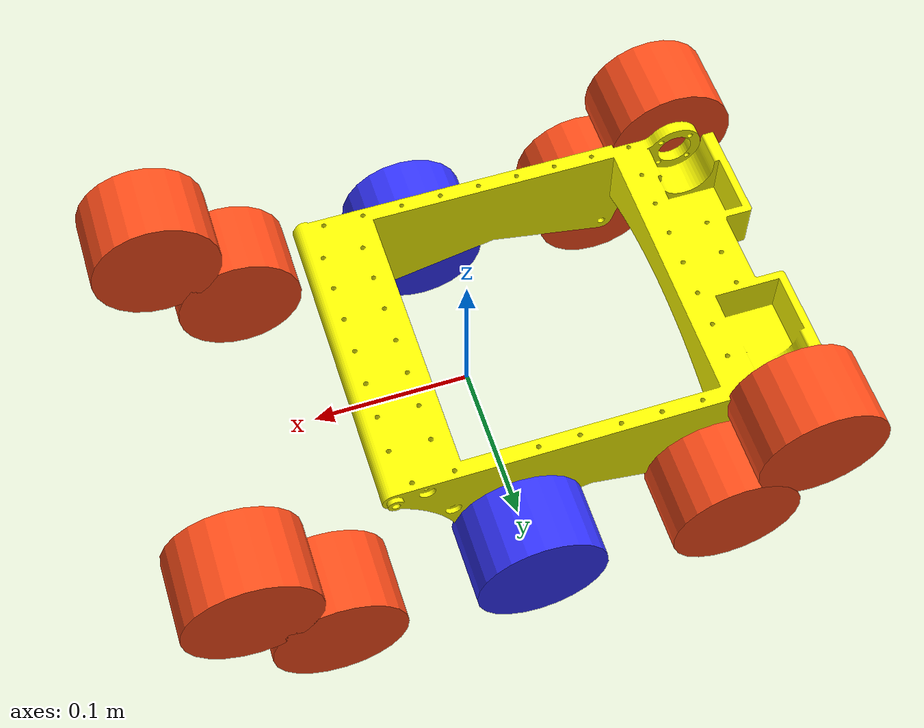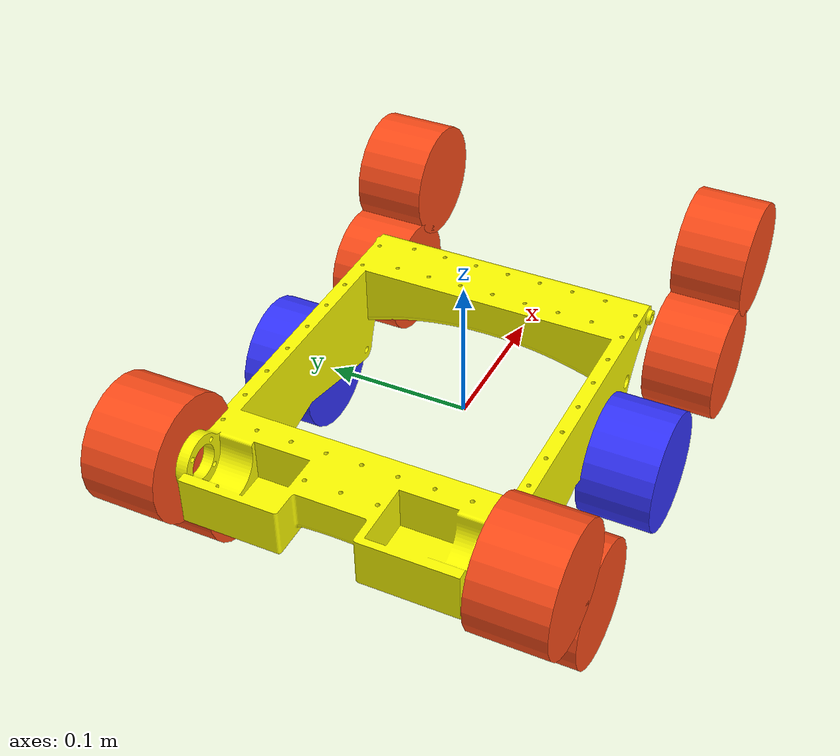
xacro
<?xml version="1.0"?>
<robot xmlns:xacro="http://www.ros.org/wiki/xacro">
    <xacro:include filename="inertial_macros.xacro" />

    <material name="white">
        <color rgba="1 1 1 1"/>
    </material>

    <material name="orange">
        <color rgba="1 0.3 0.1 1"/>
    </material>

    <material name="blue">
        <color rgba="0.2 0.2 1 1"/>
    </material>

    <material name="black">
        <color rgba="0 0 0 1"/>
    </material>

    <material name="red">
        <color rgba="1 0 0 1"/>
    </material>

    <material name="yellow">
        <color rgba="1 1 0 1"/>
    </material>

    <link name="base_link">

    </link>

    <!-- CHASSIS LINK -->
    <joint name="chassis_joint" type="fixed">
        <parent link="base_link" />
        <child link="chassis" />
        <origin xyz="0 0 0.066345" />
    </joint>

    <link name="chassis">
        <visual>
            <origin xyz="0 -0.090 0" rpy="0 0 -${pi/2}" />
            <geometry>
                <mesh filename="file://$(find robot_description)/stl/robot_frame.stl" scale="0.001 0.001 0.001" />
            </geometry>
            <material name="yellow" />
        </visual>
        <collision>
            <origin xyz="0 0 -0.037" />
            <geometry>
                <box size="0.356 0.195 0.074" />
            </geometry>
        </collision>
        <xacro:inertial_box mass="0.5" x="0.356" y="0.195" z="0.074">
            <origin xyz="0 0 0.0" rpy="0 0 0" />
        </xacro:inertial_box>
    </link>

    <!-- LEFT WHEEL LINK -->

    <!-- Wheels have r=30.6mm and track is 10.6mm wide, so total radius of 41.2mm -->
    <!-- The track is 50mm wide -->
    <joint name="left_wheel_joint" type="continuous">
        <parent link="base_link" />
        <child link="left_wheel" />
        <origin xyz="0 0.1225 0" rpy="-${pi/2} 0 0" />
        <axis xyz="0 0 1" />
    </joint>

    <link name="left_wheel">
        <visual>
            <geometry>
                <cylinder radius="0.0412" length="0.05" />
            </geometry>
            <material name="blue" />
        </visual>
        <collision>
            <geometry>
                <cylinder radius="0.0412" length="0.05" />
            </geometry>
        </collision>
        <xacro:inertial_cylinder mass="0.1" length="0.05" radius="0.0412">
            <origin xyz="0 0 0" rpy="0 0 0" />
        </xacro:inertial_cylinder>
    </link>

    <!-- RIGHT WHEEL LINK -->
    <joint name="right_wheel_joint" type="continuous">
        <parent link="base_link" />
        <child link="right_wheel" />
        <origin xyz="0 -0.1225 0" rpy="${pi/2} 0 0" />
        <axis xyz="0 0 -1" />
    </joint>

    <link name="right_wheel">
        <visual>
            <geometry>
                <cylinder radius="0.0412" length="0.05" />
            </geometry>
            <material name="blue" />
        </visual>
        <collision>
            <geometry>
                <cylinder radius="0.0412" length="0.05" />
            </geometry>
        </collision>
        <xacro:inertial_cylinder mass="0.1" length="0.05" radius="0.0412">
            <origin xyz="0 0 0" rpy="0 0 0" />
        </xacro:inertial_cylinder>
    </link>

    <!-- DUMMY WHEELS AT FRONT AND BACK -->

    <joint name="front_left_bottom_wheel_joint" type="fixed">
        <parent link="base_link" />
        <child link="front_left_bottom_wheel" />
        <origin xyz="0.124 -0.1225 0" rpy="-${pi/2} 0 0" />
        <axis xyz="0 0 1" />
    </joint>

    <link name="front_left_bottom_wheel">
        <visual>
            <geometry>
                <cylinder radius="0.0411" length="0.05" />
            </geometry>
            <material name="orange" />
        </visual>
        <collision>
            <geometry>
                <cylinder radius="0.0411" length="0.05" />
            </geometry>
        </collision>
    </link>

    <joint name="front_left_top_wheel_joint" type="fixed">
        <parent link="base_link" />
        <child link="front_left_top_wheel" />
        <origin xyz="0.1705 -0.1225 0.058845" rpy="-${pi/2} 0 0" />
        <axis xyz="0 0 1" />
    </joint>

    <link name="front_left_top_wheel">
        <visual>
            <geometry>
                <cylinder radius="0.0411" length="0.05" />
            </geometry>
            <material name="orange" />
        </visual>
        <collision>
            <geometry>
                <cylinder radius="0.0411" length="0.05" />
            </geometry>
        </collision>
    </link>

    <joint name="front_right_bottom_wheel_joint" type="fixed">
        <parent link="base_link" />
        <child link="front_right_bottom_wheel" />
        <origin xyz="0.124 0.1225 0" rpy="-${pi/2} 0 0" />
        <axis xyz="0 0 -1" />
    </joint>

    <link name="front_right_bottom_wheel">
        <visual>
            <geometry>
                <cylinder radius="0.0411" length="0.05" />
            </geometry>
            <material name="orange" />
        </visual>
        <collision>
            <geometry>
                <cylinder radius="0.0411" length="0.05" />
            </geometry>
        </collision>
    </link>

    <joint name="front_right_top_wheel_joint" type="fixed">
        <parent link="base_link" />
        <child link="front_right_top_wheel" />
        <origin xyz="0.1705 0.1225 0.058845" rpy="-${pi/2} 0 0" />
        <axis xyz="0 0 1" />
    </joint>

    <link name="front_right_top_wheel">
        <visual>
            <geometry>
                <cylinder radius="0.0411" length="0.05" />
            </geometry>
            <material name="orange" />
        </visual>
        <collision>
            <geometry>
                <cylinder radius="0.0411" length="0.05" />
            </geometry>
        </collision>
    </link>

    <joint name="back_left_bottom_wheel_joint" type="fixed">
        <parent link="base_link" />
        <child link="back_left_bottom_wheel" />
        <origin xyz="-0.124 -0.1225 0" rpy="-${pi/2} 0 0" />
        <axis xyz="0 0 1" />
    </joint>

    <link name="back_left_bottom_wheel">
        <visual>
            <geometry>
                <cylinder radius="0.0411" length="0.05" />
            </geometry>
            <material name="orange" />
        </visual>
        <collision>
            <geometry>
                <cylinder radius="0.0411" length="0.05" />
            </geometry>
        </collision>
    </link>

    <joint name="back_left_top_wheel_joint" type="fixed">
        <parent link="base_link" />
        <child link="back_left_top_wheel" />
        <origin xyz="-0.1705 -0.1225 0.058845" rpy="-${pi/2} 0 0" />
        <axis xyz="0 0 1" />
    </joint>

    <link name="back_left_top_wheel">
        <visual>
            <geometry>
                <cylinder radius="0.0411" length="0.05" />
            </geometry>
            <material name="orange" />
        </visual>
        <collision>
            <geometry>
                <cylinder radius="0.0411" length="0.05" />
            </geometry>
        </collision>
    </link>

    <joint name="back_right_wheel_joint" type="fixed">
        <parent link="base_link" />
        <child link="back_right_wheel" />
        <origin xyz="-0.124 0.1225 0" rpy="-${pi/2} 0 0" />
        <axis xyz="0 0 -1" />
    </joint>

    <link name="back_right_wheel">
        <visual>
            <geometry>
                <cylinder radius="0.0411" length="0.05" />
            </geometry>
            <material name="orange" />
        </visual>
        <collision>
            <geometry>
                <cylinder radius="0.0411" length="0.05" />
            </geometry>
        </collision>
    </link>

    <joint name="back_right_top_wheel_joint" type="fixed">
        <parent link="base_link" />
        <child link="back_right_top_wheel" />
        <origin xyz="-0.1705 0.1225 0.058845" rpy="-${pi/2} 0 0" />
        <axis xyz="0 0 1" />
    </joint>

    <link name="back_right_top_wheel">
        <visual>
            <geometry>
                <cylinder radius="0.0411" length="0.05" />
            </geometry>
            <material name="orange" />
        </visual>
        <collision>
            <geometry>
                <cylinder radius="0.0411" length="0.05" />
            </geometry>
        </collision>
    </link>
</robot>
